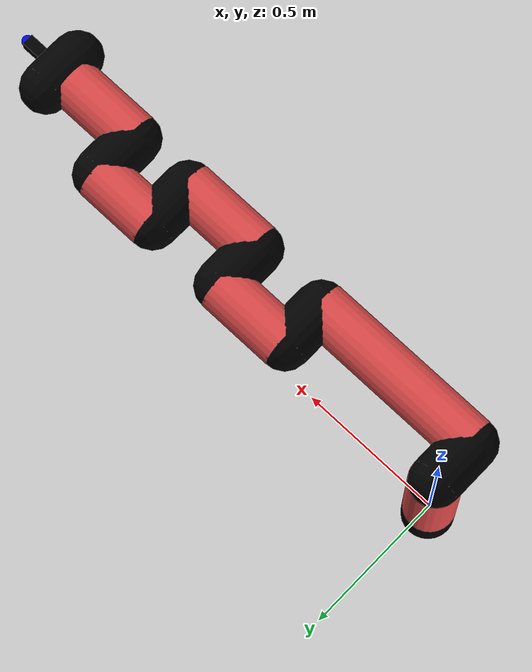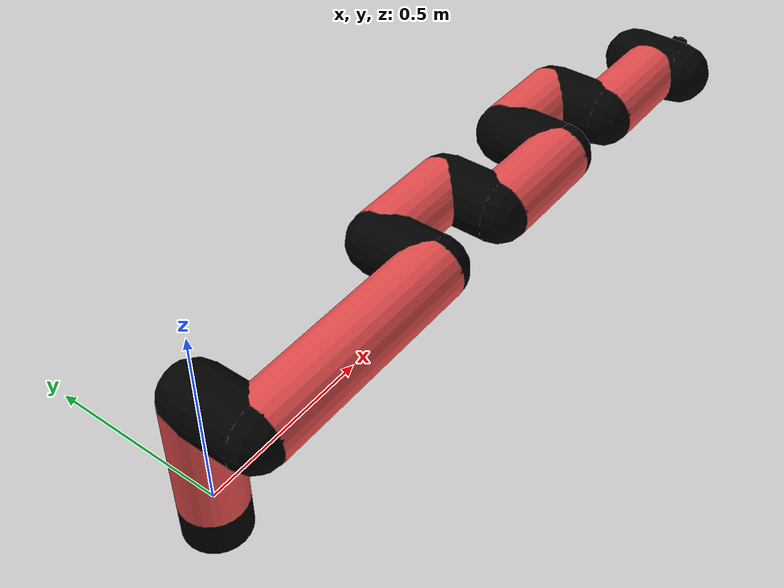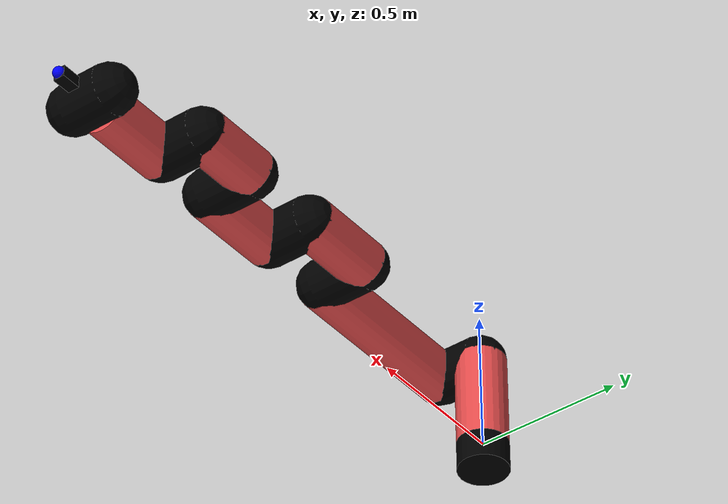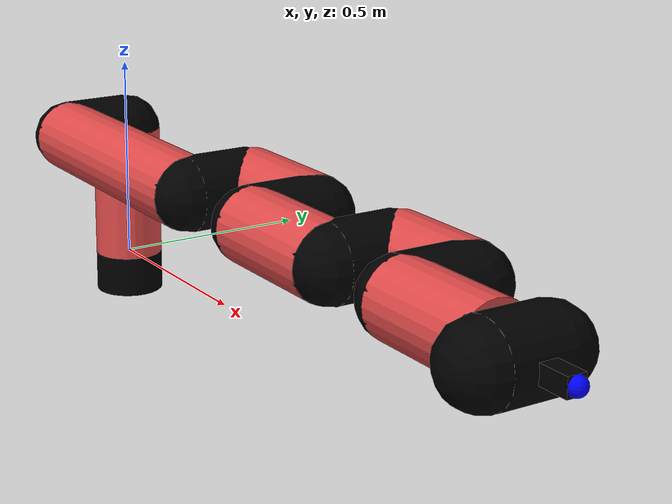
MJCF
<mujoco model="manipulator">
		<compiler angle="degree" coordinate="local" inertiafromgeom="auto" meshdir="meshes/"/>
		<option gravity="0 0 0" integrator="RK4" iterations="30" timestep="0.01"/>

		<default>
		<joint armature="1" limited="true" stiffness="10" damping="15" frictionloss="5.0"/>
		<geom conaffinity="1" condim="3" contype="1" friction=".5 .1 .1" margin="0.002"/>
		<motor ctrllimited="true"/>
		<position ctrllimited="true"/>
		</default>

		<asset>
		<texture builtin="gradient" height="100" rgb1="1.0 1.0 1.0" rgb2="1.0 1.0 1.0" type="skybox" width="100"/>
		<texture builtin="flat" height="32" name="arm_tex" rgb1="0.9 0.3 0.3" type="2d" width="32"/>
		<texture builtin="flat" height="32" name="gripper_tex" rgb1="0.0 0.0 0.0" type="cube" width="32"/>

		<material name="arm_mat" shininess="0.1" specular="0.1" texture="arm_tex"/>
		<material name="gripper_mat" shininess="1" specular="1" texture="gripper_tex"/>
		</asset>

		<worldbody>
		<light cutoff="45" diffuse=".8 .8 .8" dir="0 0.16 -1" directional="false" name="light" pos="0 -2.0 8.0" specular="0.3 0.3 0.3"/>

		<body name="base_link" pos="0 0 -0.1">
		<geom fromto="0 0 0 0 0 0.1" material="arm_mat" name="base_link" rgba="0.0 0.0 0.0 1" size="0.085" type="cylinder"/>
		</body>

		<body name="l1" pos="0 0 0">
<geom fromto="0 0 0 0 0 0.33" material="arm_mat" name="l1" rgba="0.9 0.3 0.3 1" size="0.085" type="cylinder"/>
<geom fromto="0 0 0.33 0 -0.16 0.33" material="arm_mat" name="l1_ex" rgba="0.0 0.0 0.0 1" size="0.085" type="capsule"/>
<joint axis="0 0 1" name="j1" pos="0 0 0" range="-90 90" damping="29.72" frictionloss="10.07"/>

<body name="l2" pos="0 -0.16 0.33">
<geom fromto="0 0 0 0.62 0 0" material="arm_mat" name="l2" rgba="0.9 0.3 0.3 1" size="0.085" type="cylinder"/>
<geom fromto="0.62 0 0 0.62 0.16 0" material="arm_mat" name="l2_ex" rgba="0.0 0.0 0.0 1" size="0.085" type="capsule"/>
<joint axis="0.0 1.0 0.0" name="j2" pos="0 0 0" range="-90 60" damping="33.75" frictionloss="10.22"/>

<body name="l3" pos="0.62 0.16 0">
<geom fromto="0 0 0 0.27 0 0" material="arm_mat" name="l3" rgba="0.9 0.3 0.3 1" size="0.085" type="cylinder"/>
<geom fromto="0.27 0 0 0.27 -0.16 0" material="arm_mat" name="l3_ex" rgba="0.0 0.0 0.0 1" size="0.085" type="capsule"/>
<joint axis="0.0 1.0 0.0" name="j3" pos="0 0 0" range="-30 60" damping="35.4" frictionloss="7.95"/>

<body name="l4" pos="0.27 -0.16 0">
<geom fromto="0 0 0 0.29 0 0" material="arm_mat" name="l4" rgba="0.9 0.3 0.3 1" size="0.085" type="cylinder"/>
<geom fromto="0.29 0 0 0.29 0.16 0" material="arm_mat" name="l4_ex" rgba="0.0 0.0 0.0 1" size="0.085" type="capsule"/>
<joint axis="0.0 1.0 0.0" name="j4" pos="0 0 0" range="-30 60" damping="23.78" frictionloss="9.85"/>

<body name="l5" pos="0.29 0.16 0">
<geom fromto="0 0 0 0.23 0 0" material="arm_mat" name="l5" rgba="0.9 0.3 0.3 1" size="0.085" type="cylinder"/>
<geom fromto="0.23 0 0 0.23 -0.16 0" material="arm_mat" name="l5_ex" rgba="0.0 0.0 0.0 1" size="0.085" type="capsule"/>
<joint axis="0.0 1.0 0.0" name="j5" pos="0 0 0" range="-30 60" damping="29.91" frictionloss="10.95"/>

<body name="l6" pos="0.23 -0.16 0">
<geom fromto="0 0 0 0.27 0 0" material="arm_mat" name="l6" rgba="0.9 0.3 0.3 1" size="0.085" type="cylinder"/>
<joint axis="0.0 1.0 0.0" name="j6" pos="0 0 0" range="-30 60" damping="31.61" frictionloss="10.22"/>

<body name="gripper" pos="0.27 0 0">
<geom fromto="0.05 -0.07 0 0.05 0.07 0" material="gripper_mat" name="gripper" rgba="0.0 0.0 0.0 1" size="0.085" type="capsule"/><joint axis="1 0 0" name="j7" pos="0 0 0" range="-90 90" damping="15" frictionloss="5.0"/><body name="finger" pos="0.1 0 0">
<geom fromto="0 0.0 0 0.1 0.0 0" material="gripper_mat" name="finger" rgba="0.0 0.0 0.0 1" size="0.020 0.06 0.06" type="box"/>
</body>
<site name="current" pos="0.2 0. 0.0" rgba="0. 0. 1.0 1" size="0.02" type="sphere"/>
</body>
</body>
</body>
</body>
</body>
</body>
</body>
</worldbody>
<actuator>
<motor ctrllimited="true" ctrlrange="-1.0 1.0" joint="j1" gear="74.36"/>
<motor ctrllimited="true" ctrlrange="-1.0 1.0" joint="j2" gear="61.25"/>
<motor ctrllimited="true" ctrlrange="-1.0 1.0" joint="j3" gear="95.38"/>
<motor ctrllimited="true" ctrlrange="-1.0 1.0" joint="j4" gear="91.74"/>
<motor ctrllimited="true" ctrlrange="-1.0 1.0" joint="j5" gear="77.44"/>
<motor ctrllimited="true" ctrlrange="-1.0 1.0" joint="j6" gear="64.76"/>
<motor ctrllimited="true" ctrlrange="-1.0 1.0" joint="j7" gear="80"/>
</actuator>
</mujoco>
